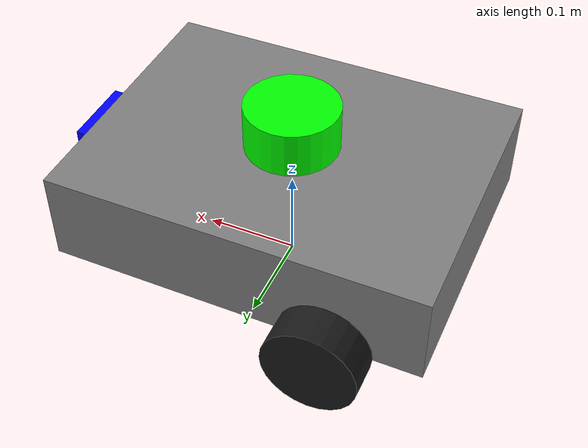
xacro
<?xml version="1.0"?>
<robot name="autonomous_explorer" xmlns:xacro="http://www.ros.org/wiki/xacro">

  <!-- Base link -->
  <link name="base_link"/>

  <!-- CHASSIS -->
  <link name="chassis">
    <visual>
      <geometry>
        <box size="0.4 0.3 0.1"/>
      </geometry>
      <origin xyz="0 0 0" rpy="0 0 0"/>
      <material name="gray">
        <color rgba="0.5 0.5 0.5 1"/>
      </material>
    </visual>
    <collision>
      <geometry>
        <box size="0.4 0.3 0.1"/>
      </geometry>
      <origin xyz="0 0 0" rpy="0 0 0"/>
    </collision>
    <inertial>
      <origin xyz="0 0 0" rpy="0 0 0"/>
      <mass value="5.0"/>
      <inertia ixx="0.083" iyy="0.083" izz="0.125"
               ixy="0.0" ixz="0.0" iyz="0.0"/>
    </inertial>
  </link>

  <!-- Wheels -->
  <link name="left_wheel">
    <visual>
      <geometry>
        <cylinder radius="0.05" length="0.04"/>
      </geometry>
      <origin xyz="0 0 0" rpy="1.5708 0 0"/>
      <material name="black">
        <color rgba="0.1 0.1 0.1 1"/>
      </material>
    </visual>
    <collision>
      <geometry>
        <cylinder radius="0.05" length="0.04"/>
      </geometry>
      <origin xyz="0 0 0" rpy="1.5708 0 0"/>
    </collision>
    <inertial>
      <origin xyz="0 0 0" rpy="1.5708 0 0"/>
      <mass value="0.5"/>
      <inertia ixx="0.00083" iyy="0.00083" izz="0.00125"
               ixy="0.0" ixz="0.0" iyz="0.0"/>
    </inertial>
  </link>

  <link name="right_wheel">
    <visual>
      <geometry>
        <cylinder radius="0.05" length="0.04"/>
      </geometry>
      <origin xyz="0 0 0" rpy="1.5708 0 0"/>
      <material name="black">
        <color rgba="0.1 0.1 0.1 1"/>
      </material>
    </visual>
    <collision>
      <geometry>
        <cylinder radius="0.05" length="0.04"/>
      </geometry>
      <origin xyz="0 0 0" rpy="1.5708 0 0"/>
    </collision>
    <inertial>
      <origin xyz="0 0 0" rpy="1.5708 0 0"/>
      <mass value="0.5"/>
      <inertia ixx="0.00083" iyy="0.00083" izz="0.00125"
               ixy="0.0" ixz="0.0" iyz="0.0"/>
    </inertial>
  </link>

  <!-- Caster wheel -->
  <link name="caster_wheel">
    <visual>
      <geometry>
        <sphere radius="0.025"/>
      </geometry>
      <origin xyz="0 0 0" rpy="0 0 0"/>
      <material name="gray">
        <color rgba="0.5 0.5 0.5 1"/>
      </material>
    </visual>
    <collision>
      <geometry>
        <sphere radius="0.025"/>
      </geometry>
      <origin xyz="0 0 0" rpy="0 0 0"/>
    </collision>
    <inertial>
      <origin xyz="0 0 0" rpy="0 0 0"/>
      <mass value="0.2"/>
      <inertia ixx="0.0001" iyy="0.0001" izz="0.0001"
               ixy="0.0" ixz="0.0" iyz="0.0"/>
    </inertial>
  </link>

  <!-- Sensors -->
  <link name="lidar_link">
    <visual>
      <geometry>
        <cylinder radius="0.05" length="0.05"/>
      </geometry>
      <origin xyz="0 0 0" rpy="0 0 0"/>
      <material name="green">
        <color rgba="0.0 1.0 0.0 1"/>
      </material>
    </visual>
    <collision>
      <geometry>
        <cylinder radius="0.05" length="0.05"/>
      </geometry>
      <origin xyz="0 0 0" rpy="0 0 0"/>
    </collision>
    <inertial>
      <origin xyz="0 0 0" rpy="0 0 0"/>
      <mass value="0.3"/>
      <inertia ixx="0.001" iyy="0.001" izz="0.00075"
               ixy="0.0" ixz="0.0" iyz="0.0"/>
    </inertial>
  </link>

  <link name="camera_link">
    <visual>
      <geometry>
        <box size="0.05 0.08 0.03"/>
      </geometry>
      <origin xyz="0 0 0" rpy="0 0 0"/>
      <material name="blue">
        <color rgba="0.0 0.0 1.0 1"/>
      </material>
    </visual>
    <collision>
      <geometry>
        <box size="0.05 0.08 0.03"/>
      </geometry>
      <origin xyz="0 0 0" rpy="0 0 0"/>
    </collision>
    <inertial>
      <origin xyz="0 0 0" rpy="0 0 0"/>
      <mass value="0.1"/>
      <inertia ixx="0.0001" iyy="0.0001" izz="0.0001"
               ixy="0.0" ixz="0.0" iyz="0.0"/>
    </inertial>
  </link>

  <!-- JOINTS -->
  <joint name="chassis_joint" type="fixed">
    <parent link="base_link"/>
    <child link="chassis"/>
    <origin xyz="0 0 0.1" rpy="0 0 0"/>
  </joint>

  <joint name="left_wheel_joint" type="continuous">
    <parent link="chassis"/>
    <child link="left_wheel"/>
    <origin xyz="-0.1 0.17 -0.05" rpy="0 0 0"/>
    <axis xyz="0 1 0"/>
    <dynamics damping="0.2" friction="0.1"/>
  </joint>

  <joint name="right_wheel_joint" type="continuous">
    <parent link="chassis"/>
    <child link="right_wheel"/>
    <origin xyz="-0.1 -0.17 -0.05" rpy="0 0 0"/>
    <axis xyz="0 1 0"/>
    <dynamics damping="0.2" friction="0.1"/>
  </joint>

  <joint name="caster_joint" type="fixed">
    <parent link="chassis"/>
    <child link="caster_wheel"/>
    <origin xyz="0.15 0 -0.075" rpy="0 0 0"/>
  </joint>

  <joint name="lidar_joint" type="fixed">
    <parent link="chassis"/>
    <child link="lidar_link"/>
    <origin xyz="0 0 0.075" rpy="0 0 0"/>
  </joint>

  <joint name="camera_joint" type="fixed">
    <parent link="chassis"/>
    <child link="camera_link"/>
    <origin xyz="0.2125 0 0" rpy="0 0 0"/>
  </joint>

  <!-- GAZEBO PLUGINS -->
  <gazebo>
    <plugin name="differential_drive_controller" filename="libgazebo_ros_diff_drive.so">
      <updateRate>50</updateRate>
      <leftJoint>left_wheel_joint</leftJoint>
      <rightJoint>right_wheel_joint</rightJoint>
      <wheelSeparation>0.34</wheelSeparation>
      <wheelDiameter>0.1</wheelDiameter>
      <wheelAcceleration>1.0</wheelAcceleration>
      <wheelTorque>20</wheelTorque>
      <commandTopic>cmd_vel</commandTopic>
      <odometryTopic>odom</odometryTopic>
      <odometryFrame>odom</odometryFrame>
      <robotBaseFrame>base_link</robotBaseFrame>
      <publishWheelTF>false</publishWheelTF>
      <publishWheelJointState>true</publishWheelJointState>
      <publishOdom>true</publishOdom>
      <publishOdomTF>true</publishOdomTF>
      <rosDebugLevel>na</rosDebugLevel>
      <commandTimeout>0.2</commandTimeout>
      <legacyMode>false</legacyMode>
    </plugin>
  </gazebo>

  <!-- CPU-BASED LIDAR SENSOR (Compatible with Intel Graphics) -->
  <gazebo reference="lidar_link">
    <sensor type="ray" name="lidar_sensor">
      <pose>0 0 0.025 0 0 0</pose>
      <visualize>false</visualize>
      <update_rate>10</update_rate>
      <ray>
        <scan>
          <horizontal>
            <samples>360</samples>
            <resolution>1</resolution>
            <min_angle>-3.14159</min_angle>
            <max_angle>3.14159</max_angle>
          </horizontal>
        </scan>
        <range>
          <min>0.12</min>
          <max>6.0</max>
          <resolution>0.01</resolution>
        </range>
        <noise>
          <type>gaussian</type>
          <mean>0.0</mean>
          <stddev>0.01</stddev>
        </noise>
      </ray>
      <plugin name="gazebo_ros_laser" filename="libgazebo_ros_laser.so">
        <topicName>scan</topicName>
        <frameName>lidar_link</frameName>
      </plugin>
    </sensor>
  </gazebo>

  <!-- CPU-BASED CAMERA SENSOR (Compatible with Intel Graphics) -->
  <gazebo reference="camera_link">
    <sensor type="camera" name="camera">
      <update_rate>30</update_rate>
      <camera>
        <horizontal_fov>1.3962634</horizontal_fov>
        <image>
          <width>640</width>
          <height>480</height>
          <format>R8G8B8</format>
        </image>
        <clip>
          <near>0.02</near>
          <far>50</far>
        </clip>
        <noise>
          <type>gaussian</type>
          <mean>0.0</mean>
          <stddev>0.007</stddev>
        </noise>
      </camera>
      <plugin name="camera_controller" filename="libgazebo_ros_camera.so">
        <alwaysOn>true</alwaysOn>
        <updateRate>30.0</updateRate>
        <cameraName>camera</cameraName>
        <imageTopicName>image_raw</imageTopicName>
        <cameraInfoTopicName>camera_info</cameraInfoTopicName>
        <frameName>camera_link</frameName>
        <hackBaseline>0.07</hackBaseline>
        <distortionK1>0.0</distortionK1>
        <distortionK2>0.0</distortionK2>
        <distortionK3>0.0</distortionK3>
        <distortionT1>0.0</distortionT1>
        <distortionT2>0.0</distortionT2>
      </plugin>
    </sensor>
  </gazebo>

  <!-- GAZEBO MATERIALS -->
  <gazebo reference="chassis">
    <material>Gazebo/Grey</material>
  </gazebo>

  <gazebo reference="left_wheel">
    <material>Gazebo/Black</material>
    <mu1>1.0</mu1>
    <mu2>1.0</mu2>
    <kp>1000000.0</kp>
    <kd>100.0</kd>
    <minDepth>0.001</minDepth>
    <maxVel>0.1</maxVel>
  </gazebo>

  <gazebo reference="right_wheel">
    <material>Gazebo/Black</material>
    <mu1>1.0</mu1>
    <mu2>1.0</mu2>
    <kp>1000000.0</kp>
    <kd>100.0</kd>
    <minDepth>0.001</minDepth>
    <maxVel>0.1</maxVel>
  </gazebo>

  <gazebo reference="caster_wheel">
    <material>Gazebo/Grey</material>
    <mu1>0.1</mu1>
    <mu2>0.1</mu2>
    <kp>1000000.0</kp>
    <kd>100.0</kd>
    <minDepth>0.001</minDepth>
    <maxVel>0.1</maxVel>
  </gazebo>

  <gazebo reference="lidar_link">
    <material>Gazebo/Green</material>
  </gazebo>

  <gazebo reference="camera_link">
    <material>Gazebo/Blue</material>
  </gazebo>

</robot>
